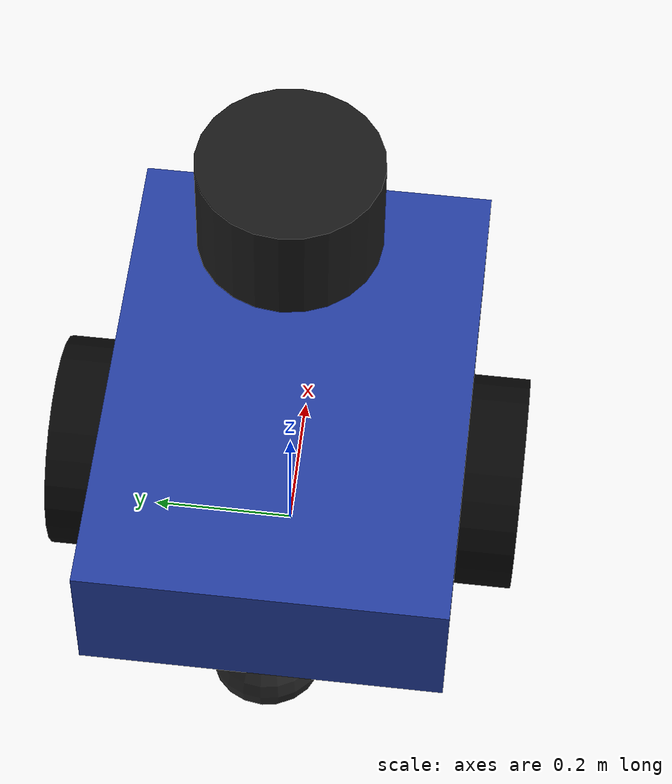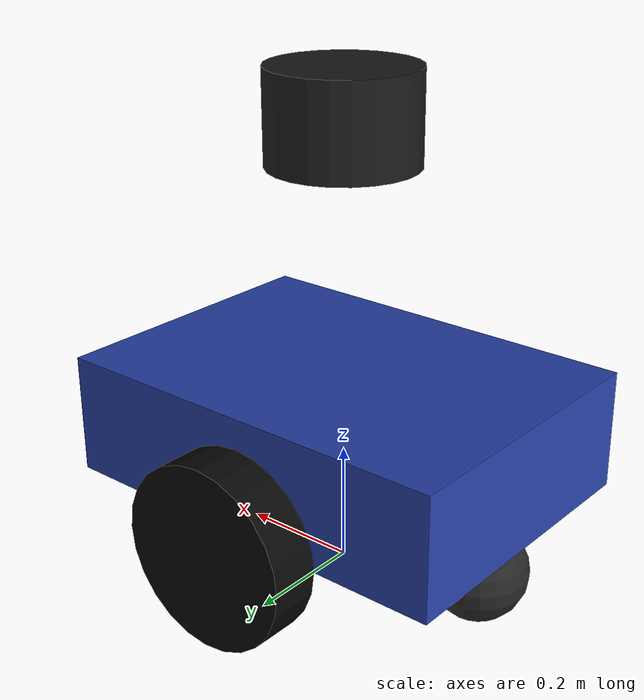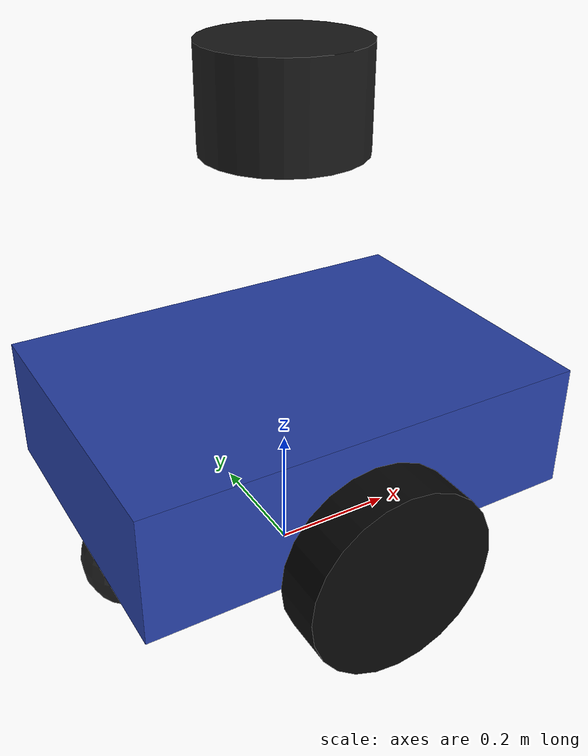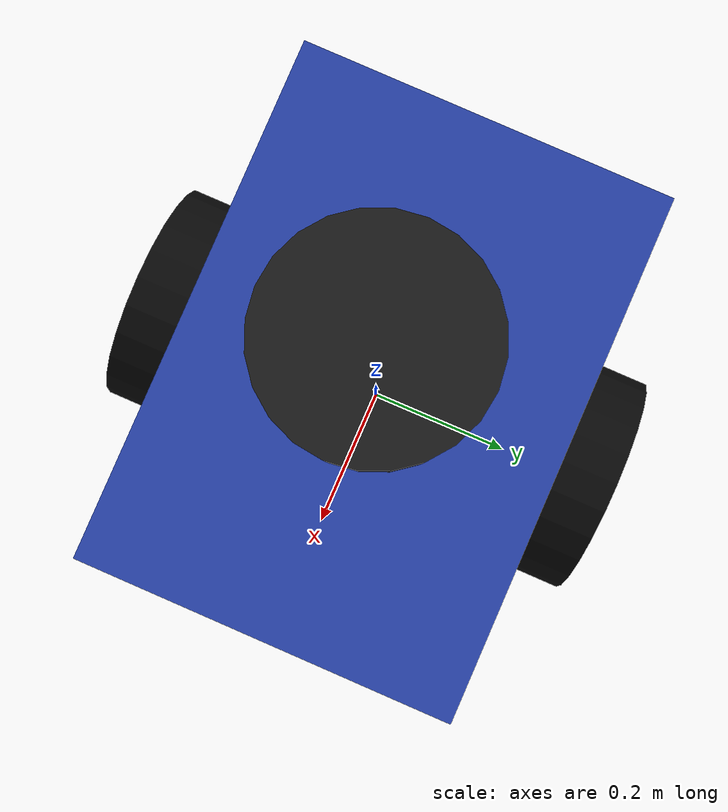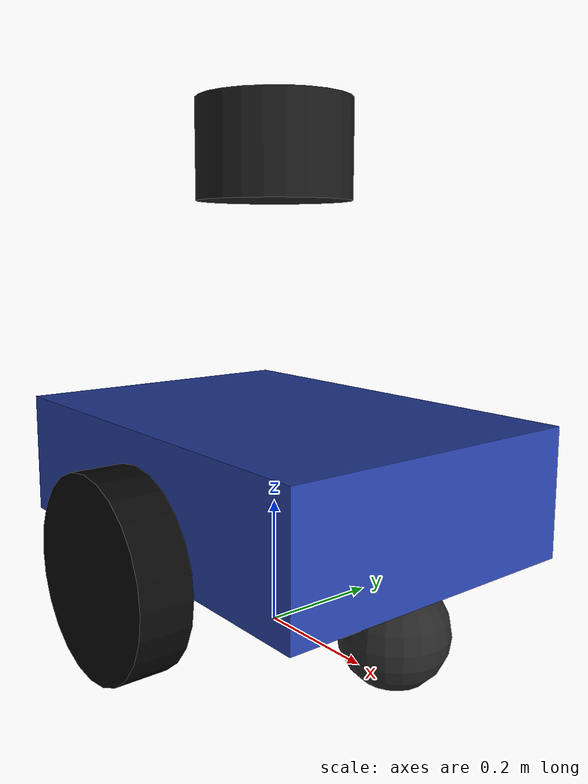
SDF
<?xml version="1.0"?>
<sdf version="1.9">
  <model name="diffbot" canonical_link="base_link">
    <self_collide>false</self_collide>
    <allow_auto_disable>false</allow_auto_disable>

    <link name="base_link">
      <pose>0 0 0.25 0 0 0</pose>
      <inertial>
        <!-- Keep the center of mass below the wheel axle to suppress chassis
             pitch and roll during acceleration and braking. -->
        <pose>0 0 -0.12 0 0 0</pose>
        <mass>15.0</mass>
        <inertia>
          <ixx>1.50</ixx><iyy>1.50</iyy><izz>0.9250</izz>
          <ixy>0</ixy><ixz>0</ixz><iyz>0</iyz>
        </inertia>
      </inertial>
      <collision name="base_collision">
        <geometry><box><size>0.70 0.50 0.20</size></box></geometry>
      </collision>
      <visual name="base_visual">
        <geometry><box><size>0.70 0.50 0.20</size></box></geometry>
        <material>
          <ambient>0.15 0.25 0.65 1</ambient>
          <diffuse>0.15 0.25 0.65 1</diffuse>
        </material>
      </visual>
      <sensor name="imu" type="imu">
        <always_on>true</always_on>
        <update_rate>200</update_rate>
        <enable_metrics>true</enable_metrics>
      </sensor>
    </link>

    <link name="left_wheel">
      <!-- Keep the link / joint frame aligned with the chassis. Rotate only
           the cylinder geometry so the revolute Y axis remains the axle. -->
      <pose>0 0.29 0.15 0 0 0</pose>
      <inertial>
        <mass>1.0</mass>
        <inertia>
          <ixx>0.0062</ixx><iyy>0.0113</iyy><izz>0.0062</izz>
          <ixy>0</ixy><ixz>0</ixz><iyz>0</iyz>
        </inertia>
      </inertial>
      <collision name="collision">
        <pose>0 0 0 1.570796 0 0</pose>
        <geometry><cylinder><radius>0.15</radius><length>0.08</length></cylinder></geometry>
        <surface>
          <friction>
            <ode><mu>1.2</mu><mu2>1.2</mu2></ode>
          </friction>
        </surface>
      </collision>
      <visual name="visual">
        <pose>0 0 0 1.570796 0 0</pose>
        <geometry><cylinder><radius>0.15</radius><length>0.08</length></cylinder></geometry>
        <material><ambient>0.03 0.03 0.03 1</ambient><diffuse>0.03 0.03 0.03 1</diffuse></material>
      </visual>
    </link>

    <link name="right_wheel">
      <pose>0 -0.29 0.15 0 0 0</pose>
      <inertial>
        <mass>1.0</mass>
        <inertia>
          <ixx>0.0062</ixx><iyy>0.0113</iyy><izz>0.0062</izz>
          <ixy>0</ixy><ixz>0</ixz><iyz>0</iyz>
        </inertia>
      </inertial>
      <collision name="collision">
        <pose>0 0 0 1.570796 0 0</pose>
        <geometry><cylinder><radius>0.15</radius><length>0.08</length></cylinder></geometry>
        <surface>
          <friction>
            <ode><mu>1.2</mu><mu2>1.2</mu2></ode>
          </friction>
        </surface>
      </collision>
      <visual name="visual">
        <pose>0 0 0 1.570796 0 0</pose>
        <geometry><cylinder><radius>0.15</radius><length>0.08</length></cylinder></geometry>
        <material><ambient>0.03 0.03 0.03 1</ambient><diffuse>0.03 0.03 0.03 1</diffuse></material>
      </visual>
    </link>

    <link name="rear_caster">
      <pose>-0.27 0 0.08 0 0 0</pose>
      <inertial>
        <mass>0.2</mass>
        <inertia>
          <ixx>0.0005</ixx><iyy>0.0005</iyy><izz>0.0005</izz>
          <ixy>0</ixy><ixz>0</ixz><iyz>0</iyz>
        </inertia>
      </inertial>
      <collision name="collision">
        <geometry><sphere><radius>0.08</radius></sphere></geometry>
        <surface>
          <friction>
            <ode><mu>0.02</mu><mu2>0.02</mu2></ode>
          </friction>
        </surface>
      </collision>
      <visual name="visual">
        <geometry><sphere><radius>0.08</radius></sphere></geometry>
        <material><ambient>0.15 0.15 0.15 1</ambient><diffuse>0.15 0.15 0.15 1</diffuse></material>
      </visual>
    </link>

    <!-- A matching front skid prevents forward pitching under braking. Its
         very low friction lets the differential drive turn without binding. -->
    <link name="front_caster">
      <pose>0.27 0 0.08 0 0 0</pose>
      <inertial>
        <mass>0.2</mass>
        <inertia>
          <ixx>0.0005</ixx><iyy>0.0005</iyy><izz>0.0005</izz>
          <ixy>0</ixy><ixz>0</ixz><iyz>0</iyz>
        </inertia>
      </inertial>
      <collision name="collision">
        <geometry><sphere><radius>0.08</radius></sphere></geometry>
        <surface>
          <friction>
            <ode><mu>0.02</mu><mu2>0.02</mu2></ode>
          </friction>
        </surface>
      </collision>
      <visual name="visual">
        <geometry><sphere><radius>0.08</radius></sphere></geometry>
        <material><ambient>0.15 0.15 0.15 1</ambient><diffuse>0.15 0.15 0.15 1</diffuse></material>
      </visual>
    </link>

    <link name="lidar_link">
      <pose>0 0 0.75 0 0 0</pose>
      <inertial>
        <mass>1.0</mass>
        <inertia>
          <ixx>0.0055</ixx><iyy>0.0055</iyy><izz>0.0072</izz>
          <ixy>0</ixy><ixz>0</ixz><iyz>0</iyz>
        </inertia>
      </inertial>
      <collision name="collision">
        <geometry><cylinder><radius>0.12</radius><length>0.15</length></cylinder></geometry>
      </collision>
      <visual name="visual">
        <geometry><cylinder><radius>0.12</radius><length>0.15</length></cylinder></geometry>
        <material><ambient>0.1 0.1 0.1 1</ambient><diffuse>0.1 0.1 0.1 1</diffuse></material>
      </visual>

      <sensor name="lidar" type="gpu_lidar">
        <always_on>true</always_on>
        <update_rate>10</update_rate>
        <visualize>false</visualize>
        <ray>
          <scan>
            <horizontal>
              <samples>720</samples>
              <resolution>1</resolution>
              <min_angle>-3.14159265</min_angle>
              <max_angle>3.14159265</max_angle>
            </horizontal>
            <vertical>
              <samples>16</samples>
              <resolution>1</resolution>
              <min_angle>-0.261799</min_angle>
              <max_angle>0.261799</max_angle>
            </vertical>
          </scan>
          <range>
            <min>0.30</min>
            <max>50.0</max>
            <resolution>0.01</resolution>
          </range>
          <noise>
            <type>gaussian</type>
            <mean>0.0</mean>
            <stddev>0.01</stddev>
          </noise>
        </ray>
      </sensor>
    </link>

    <joint name="left_wheel_joint" type="revolute">
      <parent>base_link</parent>
      <child>left_wheel</child>
      <axis>
        <xyz>0 1 0</xyz>
        <limit><lower>-1e16</lower><upper>1e16</upper></limit>
        <dynamics><damping>0.05</damping><friction>0.01</friction></dynamics>
      </axis>
    </joint>

    <joint name="right_wheel_joint" type="revolute">
      <parent>base_link</parent>
      <child>right_wheel</child>
      <axis>
        <xyz>0 1 0</xyz>
        <limit><lower>-1e16</lower><upper>1e16</upper></limit>
        <dynamics><damping>0.05</damping><friction>0.01</friction></dynamics>
      </axis>
    </joint>

    <joint name="rear_caster_joint" type="fixed">
      <parent>base_link</parent>
      <child>rear_caster</child>
    </joint>

    <joint name="front_caster_joint" type="fixed">
      <parent>base_link</parent>
      <child>front_caster</child>
    </joint>

    <joint name="lidar_joint" type="fixed">
      <parent>base_link</parent>
      <child>lidar_link</child>
    </joint>

    <plugin filename="gz-sim-diff-drive-system" name="gz::sim::systems::DiffDrive">
      <left_joint>left_wheel_joint</left_joint>
      <right_joint>right_wheel_joint</right_joint>
      <wheel_separation>0.58</wheel_separation>
      <wheel_radius>0.15</wheel_radius>
      <odom_publish_frequency>50</odom_publish_frequency>
      <max_linear_velocity>5.0</max_linear_velocity>
      <min_linear_velocity>-5.0</min_linear_velocity>
      <max_angular_velocity>1.5</max_angular_velocity>
      <min_angular_velocity>-1.5</min_angular_velocity>
      <max_linear_acceleration>0.6</max_linear_acceleration>
      <max_linear_deceleration>5.0</max_linear_deceleration>
      <max_angular_acceleration>1.0</max_angular_acceleration>
      <max_angular_deceleration>5.0</max_angular_deceleration>
    </plugin>

    <plugin filename="gz-sim-joint-state-publisher-system" name="gz::sim::systems::JointStatePublisher"/>

    <plugin filename="gz-sim-pose-publisher-system" name="gz::sim::systems::PosePublisher">
      <publish_model_pose>true</publish_model_pose>
      <publish_link_pose>false</publish_link_pose>
      <publish_collision_pose>false</publish_collision_pose>
      <publish_visual_pose>false</publish_visual_pose>
      <publish_sensor_pose>false</publish_sensor_pose>
      <publish_nested_model_pose>false</publish_nested_model_pose>
      <use_pose_vector_msg>true</use_pose_vector_msg>
      <static_publisher>false</static_publisher>
      <update_frequency>30</update_frequency>
    </plugin>

  </model>
</sdf>
